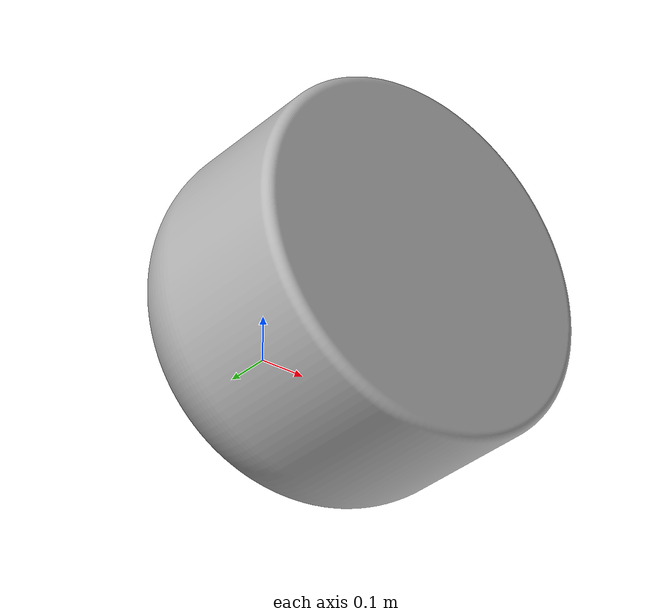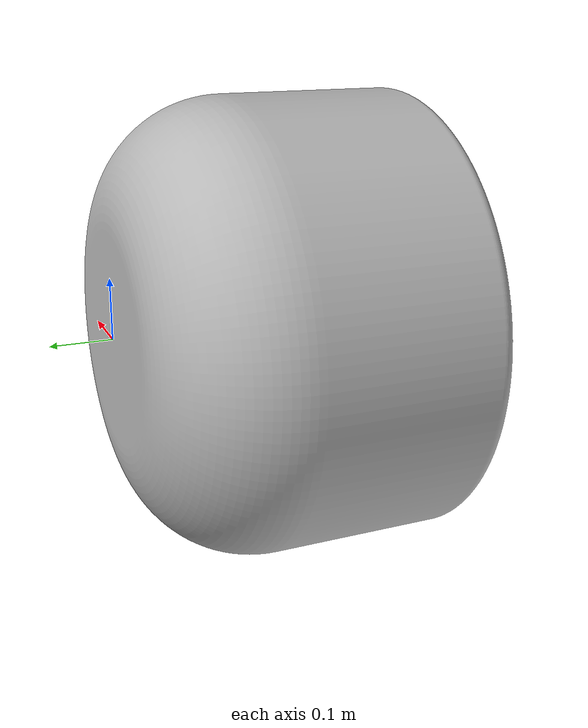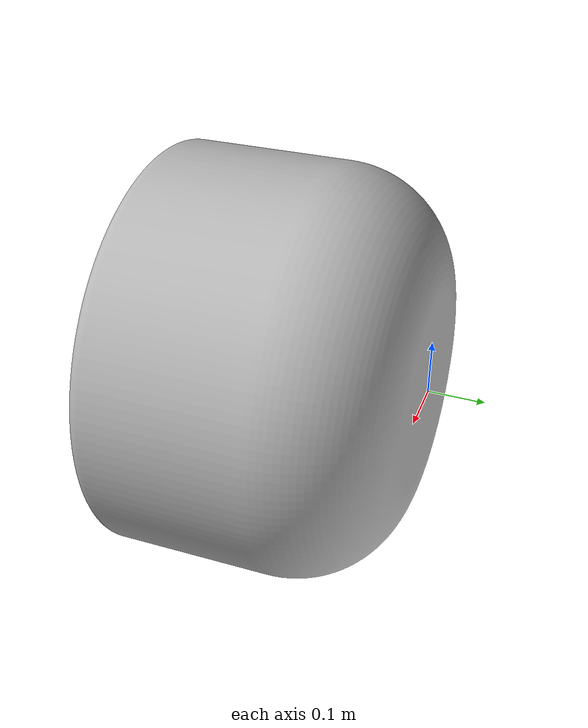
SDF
<?xml version="1.0"?>
<sdf version="1.5">
  <model name="soap_camera_3">
    <pose>0 0 0 0 0 0</pose>
    <static>false</static>

    <link name="camera_link_base">

      <visual name="visual">
        <geometry>
          <mesh>
            <uri>model://soap_camera_3/meshes/soap_camera_3.dae</uri>
          </mesh>
        </geometry>
      </visual>

      <collision name="collision">
        <geometry>
          <mesh>
            <uri>model://soap_camera_3/meshes/soap_camera_3.dae</uri>
          </mesh>
        </geometry>
      </collision>

      <sensor name="camera_link_camera" type="camera">
        <pose>0 0 0 0 0 1.570796327</pose>

        <camera>
          <horizontal_fov>1.047197551</horizontal_fov>
          <image>
            <width>1920</width>
            <height>1080</height>
            <format>R8G8B8</format>
          </image>
        </camera>

        <always_on>1</always_on>
        <update_rate>30</update_rate>
        <visualize>true</visualize>

        <plugin name="camera_controller" filename="libgazebo_ros_camera.so">
          <cameraName>camera</cameraName>
          <imageTopicName>image_raw</imageTopicName>
          <cameraInfoTopicName>camera_info</cameraInfoTopicName>
          <odometryTopic>odom</odometryTopic>
          <odometryFrame>odom</odometryFrame>
          <frameName>camera_link_optical</frameName>
        </plugin>

      </sensor>

    </link>

    <!-- model plugin -->
    <plugin name="camera_move" filename="libgazebo_ros_planar_move.so">
      <commandTopic>camera_cmd_vel</commandTopic>
      <odometryTopic>odom</odometryTopic>
      <odometryFrame>odom</odometryFrame>                         <!-- header frame id -->
      <robotBaseFrame>camera_link_base</robotBaseFrame>           <!-- child  frame id -->
    </plugin>

  </model>
</sdf>
